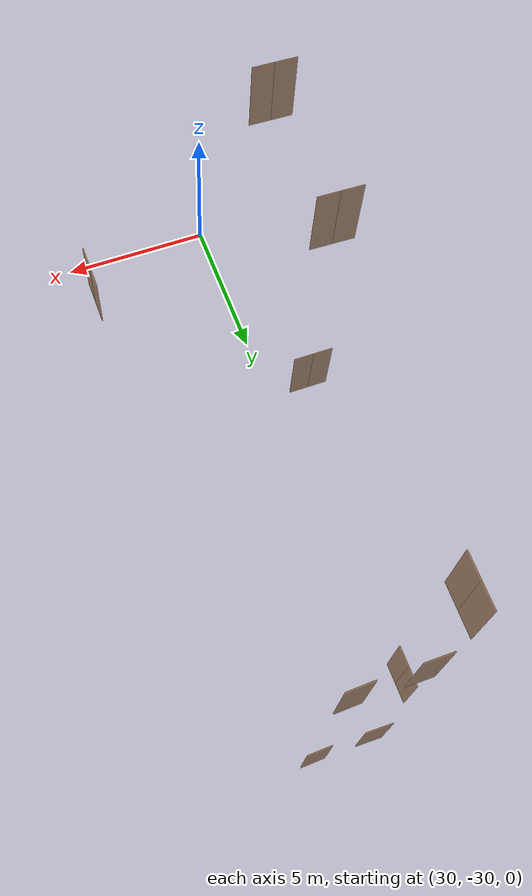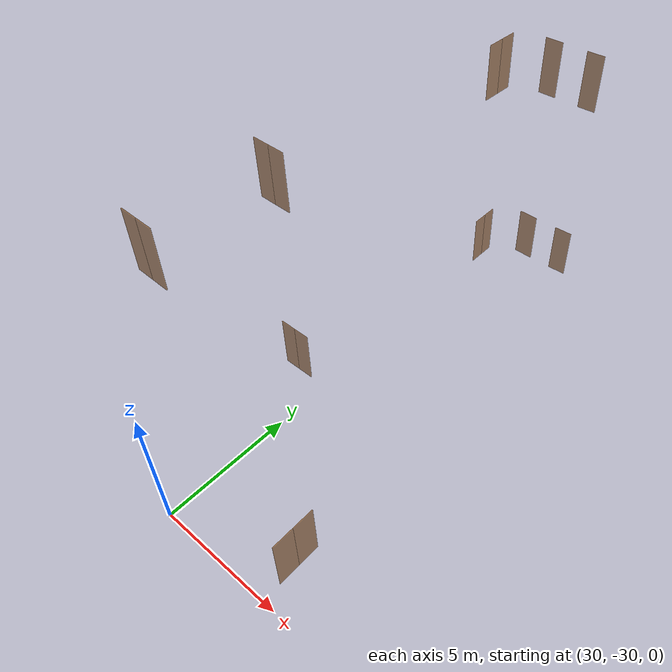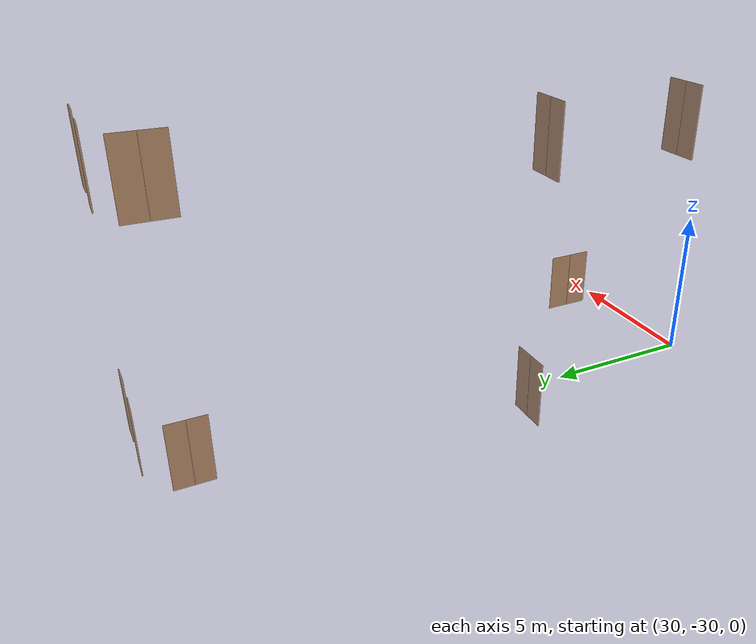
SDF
<sdf version="1.7">
 <world name="sim_world">
  <model name="TD1016AA">
   <pose>34.49816555542807 -28.447820130466024 0.0 0 0 1.5747833511723939</pose>
   <link name="right">
    <pose>0.4123607880446388 0 1.11 0 0 0</pose>
    <visual name="right_visual">
     <geometry><box><size>0.8147215760892776 0.03 2.2</size></box></geometry>
     <material>
      <ambient>0.5 0.25 0 0.6</ambient>
      <diffuse>0.5 0.25 0 0.6</diffuse>
      <pbr><metal><metalness>0.0</metalness></metal></pbr>
     </material>
    </visual>
    <collision name="right_collision">
     <geometry><box><size>0.8147215760892776 0.03 2.2</size></box></geometry>
     <surface><contact><collide_bitmask>0x02</collide_bitmask></contact></surface>
    </collision>
    <inertial>
     <mass>50.0</mass>
     <inertia><ixx>20.17041666666667</ixx><iyy>22.93238019393916</iyy><izz>2.769463527272486</izz></inertia>
    </inertial>
   </link>
   <joint name="right_joint" type="revolute">
    <parent>world</parent>
    <child>right</child>
    <axis><xyz>0 0 -1</xyz><limit><lower>0</lower><upper>1.57</upper></limit></axis>
    <pose>0.4123607880446388 0 0 0 0 0</pose>
   </joint>
   <link name="left">
    <pose>-0.4123607880446388 0 1.11 0 0 0</pose>
    <visual name="left_visual">
     <geometry><box><size>0.8147215760892776 0.03 2.2</size></box></geometry>
     <material>
      <ambient>0.5 0.25 0 0.6</ambient>
      <diffuse>0.5 0.25 0 0.6</diffuse>
      <pbr><metal><metalness>0.0</metalness></metal></pbr>
     </material>
    </visual>
    <collision name="left_collision">
     <geometry><box><size>0.8147215760892776 0.03 2.2</size></box></geometry>
     <surface><contact><collide_bitmask>0x02</collide_bitmask></contact></surface>
    </collision>
    <inertial>
     <mass>50.0</mass>
     <inertia><ixx>20.17041666666667</ixx><iyy>22.93238019393916</iyy><izz>2.769463527272486</izz></inertia>
    </inertial>
   </link>
   <joint name="left_joint" type="revolute">
    <parent>world</parent>
    <child>left</child>
    <axis><xyz>0 0 -1</xyz><limit><lower>-1.57</lower><upper>0</upper></limit></axis>
    <pose>-0.4123607880446388 0 0 0 0 0</pose>
   </joint>
   <plugin name="register_component" filename="libregister_component.so">
    <component name="Door">
     <v_max_door>0.5</v_max_door>
     <a_max_door>0.3</a_max_door>
     <a_nom_door>0.15</a_nom_door>
     <dx_min_door>0.01</dx_min_door>
     <f_max_door>500.0</f_max_door>
     <ros_interface>true</ros_interface>
     <door name="TD1016AA" type="DoubleSwingDoor" left_joint_name="left_joint" right_joint_name="right_joint"/>
    </component>
   </plugin>
  </model>
  <model name="TD1022AA">
   <pose>28.610231351138722 -22.72563021294526 0.0 0 0 3.141592653589793</pose>
   <link name="right">
    <pose>0.3318589142145072 0 1.11 0 0 0</pose>
    <visual name="right_visual">
     <geometry><box><size>0.6537178284290144 0.03 2.2</size></box></geometry>
     <material>
      <ambient>0.5 0.25 0 0.6</ambient>
      <diffuse>0.5 0.25 0 0.6</diffuse>
      <pbr><metal><metalness>0.0</metalness></metal></pbr>
     </material>
    </visual>
    <collision name="right_collision">
     <geometry><box><size>0.6537178284290144 0.03 2.2</size></box></geometry>
     <surface><contact><collide_bitmask>0x02</collide_bitmask></contact></surface>
    </collision>
    <inertial>
     <mass>50.0</mass>
     <inertia><ixx>20.17041666666667</ixx><iyy>21.947279163358115</iyy><izz>1.7843624966914429</izz></inertia>
    </inertial>
   </link>
   <joint name="right_joint" type="revolute">
    <parent>world</parent>
    <child>right</child>
    <axis><xyz>0 0 -1</xyz><limit><lower>0</lower><upper>1.57</upper></limit></axis>
    <pose>0.3318589142145072 0 0 0 0 0</pose>
   </joint>
   <link name="left">
    <pose>-0.3318589142145072 0 1.11 0 0 0</pose>
    <visual name="left_visual">
     <geometry><box><size>0.6537178284290144 0.03 2.2</size></box></geometry>
     <material>
      <ambient>0.5 0.25 0 0.6</ambient>
      <diffuse>0.5 0.25 0 0.6</diffuse>
      <pbr><metal><metalness>0.0</metalness></metal></pbr>
     </material>
    </visual>
    <collision name="left_collision">
     <geometry><box><size>0.6537178284290144 0.03 2.2</size></box></geometry>
     <surface><contact><collide_bitmask>0x02</collide_bitmask></contact></surface>
    </collision>
    <inertial>
     <mass>50.0</mass>
     <inertia><ixx>20.17041666666667</ixx><iyy>21.947279163358115</iyy><izz>1.7843624966914429</izz></inertia>
    </inertial>
   </link>
   <joint name="left_joint" type="revolute">
    <parent>world</parent>
    <child>left</child>
    <axis><xyz>0 0 -1</xyz><limit><lower>-1.57</lower><upper>0</upper></limit></axis>
    <pose>-0.3318589142145072 0 0 0 0 0</pose>
   </joint>
   <plugin name="register_component" filename="libregister_component.so">
    <component name="Door">
     <v_max_door>0.5</v_max_door>
     <a_max_door>0.3</a_max_door>
     <a_nom_door>0.15</a_nom_door>
     <dx_min_door>0.01</dx_min_door>
     <f_max_door>500.0</f_max_door>
     <ros_interface>true</ros_interface>
     <door name="TD1022AA" type="DoubleSwingDoor" left_joint_name="left_joint" right_joint_name="right_joint"/>
    </component>
   </plugin>
  </model>
  <model name="TD1007AA">
   <pose>29.895930735907072 -12.466205875995822 0.0 0 0 -1.5737789346019069</pose>
   <link name="right">
    <pose>0.3066546672582795 0 1.11 0 0 0</pose>
    <visual name="right_visual">
     <geometry><box><size>0.603309334516559 0.03 2.2</size></box></geometry>
     <material>
      <ambient>0.5 0.25 0 0.6</ambient>
      <diffuse>0.5 0.25 0 0.6</diffuse>
      <pbr><metal><metalness>0.0</metalness></metal></pbr>
     </material>
    </visual>
    <collision name="right_collision">
     <geometry><box><size>0.603309334516559 0.03 2.2</size></box></geometry>
     <surface><contact><collide_bitmask>0x02</collide_bitmask></contact></surface>
    </collision>
    <inertial>
     <mass>50.0</mass>
     <inertia><ixx>20.17041666666667</ixx><iyy>21.683258971311727</iyy><izz>1.5203423046450555</izz></inertia>
    </inertial>
   </link>
   <joint name="right_joint" type="revolute">
    <parent>world</parent>
    <child>right</child>
    <axis><xyz>0 0 -1</xyz><limit><lower>0</lower><upper>1.57</upper></limit></axis>
    <pose>0.3066546672582795 0 0 0 0 0</pose>
   </joint>
   <link name="left">
    <pose>-0.3066546672582795 0 1.11 0 0 0</pose>
    <visual name="left_visual">
     <geometry><box><size>0.603309334516559 0.03 2.2</size></box></geometry>
     <material>
      <ambient>0.5 0.25 0 0.6</ambient>
      <diffuse>0.5 0.25 0 0.6</diffuse>
      <pbr><metal><metalness>0.0</metalness></metal></pbr>
     </material>
    </visual>
    <collision name="left_collision">
     <geometry><box><size>0.603309334516559 0.03 2.2</size></box></geometry>
     <surface><contact><collide_bitmask>0x02</collide_bitmask></contact></surface>
    </collision>
    <inertial>
     <mass>50.0</mass>
     <inertia><ixx>20.17041666666667</ixx><iyy>21.683258971311727</iyy><izz>1.5203423046450555</izz></inertia>
    </inertial>
   </link>
   <joint name="left_joint" type="revolute">
    <parent>world</parent>
    <child>left</child>
    <axis><xyz>0 0 -1</xyz><limit><lower>-1.57</lower><upper>0</upper></limit></axis>
    <pose>-0.3066546672582795 0 0 0 0 0</pose>
   </joint>
   <plugin name="register_component" filename="libregister_component.so">
    <component name="Door">
     <v_max_door>0.5</v_max_door>
     <a_max_door>0.3</a_max_door>
     <a_nom_door>0.15</a_nom_door>
     <dx_min_door>0.01</dx_min_door>
     <f_max_door>500.0</f_max_door>
     <ros_interface>true</ros_interface>
     <door name="TD1007AA" type="DoubleSwingDoor" left_joint_name="left_joint" right_joint_name="right_joint"/>
    </component>
   </plugin>
  </model>
  <model name="em2">
   <pose>33.0865727852599 -11.178082443157725 0.0 0 0 0.03191096870064347</pose>
   <link name="right">
    <pose>0 0 1.11 0 0 0</pose>
    <visual name="right_visual">
     <geometry><box><size>0.7504608987853366 0.03 2.2</size></box></geometry>
     <material>
      <ambient>0.5 0.25 0 0.6</ambient>
      <diffuse>0.5 0.25 0 0.6</diffuse>
      <pbr><metal><metalness>0.0</metalness></metal></pbr>
     </material>
    </visual>
    <collision name="right_collision">
     <geometry><box><size>0.7504608987853366 0.03 2.2</size></box></geometry>
     <surface><contact><collide_bitmask>0x02</collide_bitmask></contact></surface>
    </collision>
    <inertial>
     <mass>50.0</mass>
     <inertia><ixx>20.17041666666667</ixx><iyy>22.5132981691904</iyy><izz>2.3503815025237302</izz></inertia>
    </inertial>
   </link>
   <joint name="right_joint" type="revolute">
    <parent>world</parent>
    <child>right</child>
    <axis><xyz>0 0 -1</xyz><limit><lower>0</lower><upper>1.57</upper></limit></axis>
    <pose>0.3802304493926683 0 0 0 0 0</pose>
   </joint>
   <plugin name="register_component" filename="libregister_component.so">
    <component name="Door">
     <v_max_door>0.5</v_max_door>
     <a_max_door>0.3</a_max_door>
     <a_nom_door>0.15</a_nom_door>
     <dx_min_door>0.01</dx_min_door>
     <f_max_door>500.0</f_max_door>
     <ros_interface>true</ros_interface>
     <door name="em2" type="SwingDoor" left_joint_name="empty_joint" right_joint_name="right_joint"/>
    </component>
   </plugin>
  </model>
  <model name="em1">
   <pose>31.33196599077849 -11.186173825834967 0.0 0 0 3.131795982307093</pose>
   <link name="right">
    <pose>0 0 1.11 0 0 0</pose>
    <visual name="right_visual">
     <geometry><box><size>0.8147994904935095 0.03 2.2</size></box></geometry>
     <material>
      <ambient>0.5 0.25 0 0.6</ambient>
      <diffuse>0.5 0.25 0 0.6</diffuse>
      <pbr><metal><metalness>0.0</metalness></metal></pbr>
     </material>
    </visual>
    <collision name="right_collision">
     <geometry><box><size>0.8147994904935095 0.03 2.2</size></box></geometry>
     <surface><contact><collide_bitmask>0x02</collide_bitmask></contact></surface>
    </collision>
    <inertial>
     <mass>50.0</mass>
     <inertia><ixx>20.17041666666667</ixx><iyy>22.93290920711868</iyy><izz>2.7699925404520114</izz></inertia>
    </inertial>
   </link>
   <joint name="right_joint" type="revolute">
    <parent>world</parent>
    <child>right</child>
    <axis><xyz>0 0 1</xyz><limit><lower>0</lower><upper>1.57</upper></limit></axis>
    <pose>0.41239974524675477 0 0 0 0 0</pose>
   </joint>
   <plugin name="register_component" filename="libregister_component.so">
    <component name="Door">
     <v_max_door>0.5</v_max_door>
     <a_max_door>0.3</a_max_door>
     <a_nom_door>0.15</a_nom_door>
     <dx_min_door>0.01</dx_min_door>
     <f_max_door>500.0</f_max_door>
     <ros_interface>true</ros_interface>
     <door name="em1" type="SwingDoor" left_joint_name="empty_joint" right_joint_name="right_joint"/>
    </component>
   </plugin>
  </model>
  <model name="TD1104">
   <pose>29.831071160037812 -12.370400812692349 8.0 0 0 1.555111475044199</pose>
   <link name="right">
    <pose>0.3555122669612724 0 1.11 0 0 0</pose>
    <visual name="right_visual">
     <geometry><box><size>0.7010245339225448 0.03 2.2</size></box></geometry>
     <material>
      <ambient>0.5 0.25 0 0.6</ambient>
      <diffuse>0.5 0.25 0 0.6</diffuse>
      <pbr><metal><metalness>0.0</metalness></metal></pbr>
     </material>
    </visual>
    <collision name="right_collision">
     <geometry><box><size>0.7010245339225448 0.03 2.2</size></box></geometry>
     <surface><contact><collide_bitmask>0x02</collide_bitmask></contact></surface>
    </collision>
    <inertial>
     <mass>50.0</mass>
     <inertia><ixx>20.17041666666667</ixx><iyy>22.214314154838842</iyy><izz>2.0513974881721717</izz></inertia>
    </inertial>
   </link>
   <joint name="right_joint" type="revolute">
    <parent>world</parent>
    <child>right</child>
    <axis><xyz>0 0 1</xyz><limit><lower>0</lower><upper>1.57</upper></limit></axis>
    <pose>0.3555122669612724 0 0 0 0 0</pose>
   </joint>
   <link name="left">
    <pose>-0.3555122669612724 0 1.11 0 0 0</pose>
    <visual name="left_visual">
     <geometry><box><size>0.7010245339225448 0.03 2.2</size></box></geometry>
     <material>
      <ambient>0.5 0.25 0 0.6</ambient>
      <diffuse>0.5 0.25 0 0.6</diffuse>
      <pbr><metal><metalness>0.0</metalness></metal></pbr>
     </material>
    </visual>
    <collision name="left_collision">
     <geometry><box><size>0.7010245339225448 0.03 2.2</size></box></geometry>
     <surface><contact><collide_bitmask>0x02</collide_bitmask></contact></surface>
    </collision>
    <inertial>
     <mass>50.0</mass>
     <inertia><ixx>20.17041666666667</ixx><iyy>22.214314154838842</iyy><izz>2.0513974881721717</izz></inertia>
    </inertial>
   </link>
   <joint name="left_joint" type="revolute">
    <parent>world</parent>
    <child>left</child>
    <axis><xyz>0 0 1</xyz><limit><lower>-1.57</lower><upper>0</upper></limit></axis>
    <pose>-0.3555122669612724 0 0 0 0 0</pose>
   </joint>
   <plugin name="register_component" filename="libregister_component.so">
    <component name="Door">
     <v_max_door>0.5</v_max_door>
     <a_max_door>0.3</a_max_door>
     <a_nom_door>0.15</a_nom_door>
     <dx_min_door>0.01</dx_min_door>
     <f_max_door>500.0</f_max_door>
     <ros_interface>true</ros_interface>
     <door name="TD1104" type="DoubleSwingDoor" left_joint_name="left_joint" right_joint_name="right_joint"/>
    </component>
   </plugin>
  </model>
  <model name="d2">
   <pose>33.059571625828255 -11.182166293832482 8.0 0 0 0.03094497696470782</pose>
   <link name="right">
    <pose>0 0 1.11 0 0 0</pose>
    <visual name="right_visual">
     <geometry><box><size>0.6926931969739676 0.03 2.2</size></box></geometry>
     <material>
      <ambient>0.5 0.25 0 0.6</ambient>
      <diffuse>0.5 0.25 0 0.6</diffuse>
      <pbr><metal><metalness>0.0</metalness></metal></pbr>
     </material>
    </visual>
    <collision name="right_collision">
     <geometry><box><size>0.6926931969739676 0.03 2.2</size></box></geometry>
     <surface><contact><collide_bitmask>0x02</collide_bitmask></contact></surface>
    </collision>
    <inertial>
     <mass>50.0</mass>
     <inertia><ixx>20.17041666666667</ixx><iyy>22.165932771391738</iyy><izz>2.0030161047250665</izz></inertia>
    </inertial>
   </link>
   <joint name="right_joint" type="revolute">
    <parent>world</parent>
    <child>right</child>
    <axis><xyz>0 0 -1</xyz><limit><lower>0</lower><upper>1.57</upper></limit></axis>
    <pose>0.3513465984869838 0 0 0 0 0</pose>
   </joint>
   <plugin name="register_component" filename="libregister_component.so">
    <component name="Door">
     <v_max_door>0.5</v_max_door>
     <a_max_door>0.3</a_max_door>
     <a_nom_door>0.15</a_nom_door>
     <dx_min_door>0.01</dx_min_door>
     <f_max_door>500.0</f_max_door>
     <ros_interface>true</ros_interface>
     <door name="d2" type="SwingDoor" left_joint_name="empty_joint" right_joint_name="right_joint"/>
    </component>
   </plugin>
  </model>
  <model name="d1">
   <pose>31.3333783748407 -11.187873680363586 8.0 0 0 -3.1414135882629974</pose>
   <link name="right">
    <pose>0 0 1.11 0 0 0</pose>
    <visual name="right_visual">
     <geometry><box><size>0.7193857536835634 0.03 2.2</size></box></geometry>
     <material>
      <ambient>0.5 0.25 0 0.6</ambient>
      <diffuse>0.5 0.25 0 0.6</diffuse>
      <pbr><metal><metalness>0.0</metalness></metal></pbr>
     </material>
    </visual>
    <collision name="right_collision">
     <geometry><box><size>0.7193857536835634 0.03 2.2</size></box></geometry>
     <surface><contact><collide_bitmask>0x02</collide_bitmask></contact></surface>
    </collision>
    <inertial>
     <mass>50.0</mass>
     <inertia><ixx>20.17041666666667</ixx><iyy>22.322982760845292</iyy><izz>2.160066094178619</izz></inertia>
    </inertial>
   </link>
   <joint name="right_joint" type="revolute">
    <parent>world</parent>
    <child>right</child>
    <axis><xyz>0 0 1</xyz><limit><lower>0</lower><upper>1.57</upper></limit></axis>
    <pose>0.3646928768417817 0 0 0 0 0</pose>
   </joint>
   <plugin name="register_component" filename="libregister_component.so">
    <component name="Door">
     <v_max_door>0.5</v_max_door>
     <a_max_door>0.3</a_max_door>
     <a_nom_door>0.15</a_nom_door>
     <dx_min_door>0.01</dx_min_door>
     <f_max_door>500.0</f_max_door>
     <ros_interface>true</ros_interface>
     <door name="d1" type="SwingDoor" left_joint_name="empty_joint" right_joint_name="right_joint"/>
    </component>
   </plugin>
  </model>
  <model name="TD1105">
   <pose>28.610416642762054 -22.824089985987072 8.0 0 0 3.11904258186162</pose>
   <link name="right">
    <pose>0.33110365024338156 0 1.11 0 0 0</pose>
    <visual name="right_visual">
     <geometry><box><size>0.6522073004867631 0.03 2.2</size></box></geometry>
     <material>
      <ambient>0.5 0.25 0 0.6</ambient>
      <diffuse>0.5 0.25 0 0.6</diffuse>
      <pbr><metal><metalness>0.0</metalness></metal></pbr>
     </material>
    </visual>
    <collision name="right_collision">
     <geometry><box><size>0.6522073004867631 0.03 2.2</size></box></geometry>
     <surface><contact><collide_bitmask>0x02</collide_bitmask></contact></surface>
    </collision>
    <inertial>
     <mass>50.0</mass>
     <inertia><ixx>20.17041666666667</ixx><iyy>21.9390598450343</iyy><izz>1.7761431783676291</izz></inertia>
    </inertial>
   </link>
   <joint name="right_joint" type="revolute">
    <parent>world</parent>
    <child>right</child>
    <axis><xyz>0 0 -1</xyz><limit><lower>0</lower><upper>1.57</upper></limit></axis>
    <pose>0.33110365024338156 0 0 0 0 0</pose>
   </joint>
   <link name="left">
    <pose>-0.33110365024338156 0 1.11 0 0 0</pose>
    <visual name="left_visual">
     <geometry><box><size>0.6522073004867631 0.03 2.2</size></box></geometry>
     <material>
      <ambient>0.5 0.25 0 0.6</ambient>
      <diffuse>0.5 0.25 0 0.6</diffuse>
      <pbr><metal><metalness>0.0</metalness></metal></pbr>
     </material>
    </visual>
    <collision name="left_collision">
     <geometry><box><size>0.6522073004867631 0.03 2.2</size></box></geometry>
     <surface><contact><collide_bitmask>0x02</collide_bitmask></contact></surface>
    </collision>
    <inertial>
     <mass>50.0</mass>
     <inertia><ixx>20.17041666666667</ixx><iyy>21.9390598450343</iyy><izz>1.7761431783676291</izz></inertia>
    </inertial>
   </link>
   <joint name="left_joint" type="revolute">
    <parent>world</parent>
    <child>left</child>
    <axis><xyz>0 0 -1</xyz><limit><lower>-1.57</lower><upper>0</upper></limit></axis>
    <pose>-0.33110365024338156 0 0 0 0 0</pose>
   </joint>
   <plugin name="register_component" filename="libregister_component.so">
    <component name="Door">
     <v_max_door>0.5</v_max_door>
     <a_max_door>0.3</a_max_door>
     <a_nom_door>0.15</a_nom_door>
     <dx_min_door>0.01</dx_min_door>
     <f_max_door>500.0</f_max_door>
     <ros_interface>true</ros_interface>
     <door name="TD1105" type="DoubleSwingDoor" left_joint_name="left_joint" right_joint_name="right_joint"/>
    </component>
   </plugin>
  </model>
  <model name="TD11061">
   <pose>28.599983485678962 -27.548646343588032 8.0 0 0 -0.022152788436983237</pose>
   <link name="right">
    <pose>0.3367416731741536 0 1.11 0 0 0</pose>
    <visual name="right_visual">
     <geometry><box><size>0.6634833463483072 0.03 2.2</size></box></geometry>
     <material>
      <ambient>0.5 0.25 0 0.6</ambient>
      <diffuse>0.5 0.25 0 0.6</diffuse>
      <pbr><metal><metalness>0.0</metalness></metal></pbr>
     </material>
    </visual>
    <collision name="right_collision">
     <geometry><box><size>0.6634833463483072 0.03 2.2</size></box></geometry>
     <surface><contact><collide_bitmask>0x02</collide_bitmask></contact></surface>
    </collision>
    <inertial>
     <mass>50.0</mass>
     <inertia><ixx>20.17041666666667</ixx><iyy>22.00087562867312</iyy><izz>1.8379589620064491</izz></inertia>
    </inertial>
   </link>
   <joint name="right_joint" type="revolute">
    <parent>world</parent>
    <child>right</child>
    <axis><xyz>0 0 -1</xyz><limit><lower>0</lower><upper>1.57</upper></limit></axis>
    <pose>0.3367416731741536 0 0 0 0 0</pose>
   </joint>
   <link name="left">
    <pose>-0.3367416731741536 0 1.11 0 0 0</pose>
    <visual name="left_visual">
     <geometry><box><size>0.6634833463483072 0.03 2.2</size></box></geometry>
     <material>
      <ambient>0.5 0.25 0 0.6</ambient>
      <diffuse>0.5 0.25 0 0.6</diffuse>
      <pbr><metal><metalness>0.0</metalness></metal></pbr>
     </material>
    </visual>
    <collision name="left_collision">
     <geometry><box><size>0.6634833463483072 0.03 2.2</size></box></geometry>
     <surface><contact><collide_bitmask>0x02</collide_bitmask></contact></surface>
    </collision>
    <inertial>
     <mass>50.0</mass>
     <inertia><ixx>20.17041666666667</ixx><iyy>22.00087562867312</iyy><izz>1.8379589620064491</izz></inertia>
    </inertial>
   </link>
   <joint name="left_joint" type="revolute">
    <parent>world</parent>
    <child>left</child>
    <axis><xyz>0 0 -1</xyz><limit><lower>-1.57</lower><upper>0</upper></limit></axis>
    <pose>-0.3367416731741536 0 0 0 0 0</pose>
   </joint>
   <plugin name="register_component" filename="libregister_component.so">
    <component name="Door">
     <v_max_door>0.5</v_max_door>
     <a_max_door>0.3</a_max_door>
     <a_nom_door>0.15</a_nom_door>
     <dx_min_door>0.01</dx_min_door>
     <f_max_door>500.0</f_max_door>
     <ros_interface>true</ros_interface>
     <door name="TD11061" type="DoubleSwingDoor" left_joint_name="left_joint" right_joint_name="right_joint"/>
    </component>
   </plugin>
  </model>
 </world>
</sdf>
